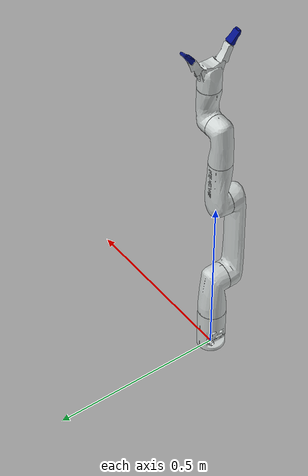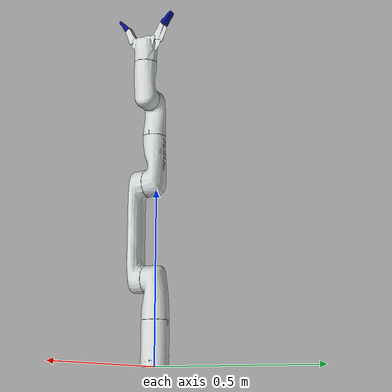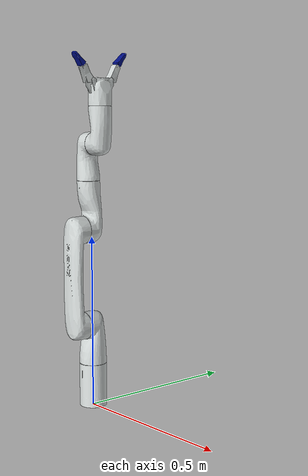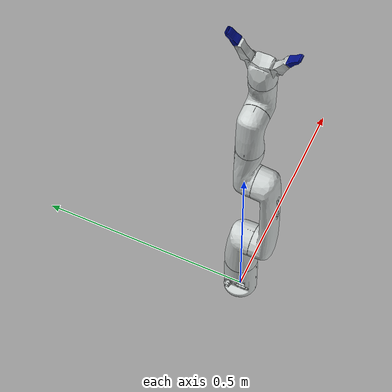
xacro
<?xml version="1.0"?>
<robot xmlns:xacro="http://www.ros.org/wiki/xacro" name="gen3_lite">
    <xacro:arg name="initial_positions_file" default="initial_positions.yaml" />
    <xacro:arg name="ros2_control_hardware_type" default="mock_components" />

    <!-- Import gen3_lite urdf file -->
    <xacro:include filename="$(find kortex_description)/robots/gen3_lite.urdf" />

    <!-- Import control_xacro -->
    <xacro:include filename="gen3_lite.ros2_control.xacro" />
    <xacro:include filename="gen3_lite_hand.ros2_control.xacro" />

    <xacro:gen3_lite_ros2_control name="FakeSystem" initial_positions_file="$(arg initial_positions_file)" ros2_control_hardware_type="$(arg ros2_control_hardware_type)"/>
    <xacro:gen3_lite_hand_ros2_control name="HandFakeSystem" initial_positions_file="$(arg initial_positions_file)" ros2_control_hardware_type="$(arg ros2_control_hardware_type)"/>

</robot>

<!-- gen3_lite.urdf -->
<!-- |    This document was autogenerated by xacro from kinova_2.urdf.xacro            | -->
<!-- |    EDITING THIS FILE BY HAND IS NOT RECOMMENDED                                 | -->
<robot name="gen3_lite">
  <!-- create link fixed to the "world" -->
  <link name="world"/>
  <ros2_control name="KortexMultiInterfaceHardware" type="system">
    <hardware>
      <plugin>kortex_driver/KortexMultiInterfaceHardware</plugin>
      <param name="robot_ip">192.168.11.11</param>
      <param name="username">admin</param>
      <param name="password">admin</param>
      <param name="port">10000</param>
      <param name="port_realtime">10001</param>
      <param name="session_inactivity_timeout_ms">60000</param>
      <param name="connection_inactivity_timeout_ms">2000</param>
      <param name="tf_prefix"></param>
      <param name="use_internal_bus_gripper_comm">False</param>
      <param name="gripper_joint_name">finger_joint</param>
      <param name="gripper_max_velocity">100.0</param>
      <param name="gripper_max_force">100.0</param>
    </hardware>
    <joint name="joint_1">
      <command_interface name="position">
        <param name="min">-2.69</param>
        <param name="max">2.69</param>
      </command_interface>
      <state_interface name="position">
        <param name="initial_value">0.0</param>
      </state_interface>
      <state_interface name="velocity"/>
      <state_interface name="effort"/>
    </joint>
    <joint name="joint_2">
      <command_interface name="position">
        <param name="min">-2.69</param>
        <param name="max">2.36</param>
      </command_interface>
      <state_interface name="position">
        <param name="initial_value">0.0</param>
      </state_interface>
      <state_interface name="velocity"/>
      <state_interface name="effort"/>
    </joint>
    <joint name="joint_3">
      <command_interface name="position">
        <param name="min">-2.69</param>
        <param name="max">2.69</param>
      </command_interface>
      <state_interface name="position">
        <param name="initial_value">0.0</param>
      </state_interface>
      <state_interface name="velocity"/>
      <state_interface name="effort"/>
    </joint>
    <joint name="joint_4">
      <command_interface name="position">
        <param name="min">-2.59</param>
        <param name="max">2.59</param>
      </command_interface>
      <state_interface name="position">
        <param name="initial_value">0.0</param>
      </state_interface>
      <state_interface name="velocity"/>
      <state_interface name="effort"/>
    </joint>
    <joint name="joint_5">
      <command_interface name="position">
        <param name="min">-2.57</param>
        <param name="max">2.57</param>
      </command_interface>
      <state_interface name="position">
        <param name="initial_value">0.0</param>
      </state_interface>
      <state_interface name="velocity"/>
      <state_interface name="effort"/>
    </joint>
    <joint name="joint_6">
      <command_interface name="position">
        <param name="min">-2.59</param>
        <param name="max">2.59</param>
      </command_interface>
      <state_interface name="position">
        <param name="initial_value">0.0</param>
      </state_interface>
      <state_interface name="velocity"/>
      <state_interface name="effort"/>
    </joint>
    <joint name="right_finger_bottom_joint">
      <command_interface name="position"/>
      <state_interface name="position"/>
      <state_interface name="velocity"/>
    </joint>
  </ros2_control>
  <joint name="base_joint" type="fixed">
    <origin rpy="0 0 0" xyz="0 0 0"/>
    <parent link="world"/>
    <child link="base_link"/>
  </joint>
  <link name="base_link">
    <inertial>
      <origin rpy="0 0 0" xyz="0.00244324 0.00015573 0.08616742"/>
      <mass value="1.14608471"/>
      <inertia ixx="0.00335854" ixy="3.9E-07" ixz="0.00010989" iyy="0.003311" iyz="1.91E-06" izz="0.00077158"/>
    </inertial>
    <visual>
      <origin rpy="0 0 0" xyz="0 0 0"/>
      <geometry>
        <mesh filename="package://kortex_description/arms/gen3_lite/6dof/meshes/base_link.STL"/>
      </geometry>
      <material name="">
        <color rgba="0.803 0.824 0.820 1"/>
      </material>
    </visual>
    <collision>
      <origin rpy="0 0 0" xyz="0 0 0"/>
      <geometry>
        <mesh filename="package://kortex_description/arms/gen3_lite/6dof/meshes/base_link.stl"/>
      </geometry>
    </collision>
  </link>
  <gazebo reference="base_link">
    <material>Kortex/Gray</material>
  </gazebo>
  <link name="shoulder_link">
    <inertial>
      <origin rpy="0 0 0" xyz="2.477E-05 0.02213531 0.09937686"/>
      <mass value="0.95974404"/>
      <inertia ixx="0.00165947" ixy="2E-08" ixz="3.6E-07" iyy="0.00140355" iyz="0.00034927" izz="0.00089493"/>
    </inertial>
    <visual>
      <origin rpy="0 0 0" xyz="0 0 0"/>
      <geometry>
        <mesh filename="package://kortex_description/arms/gen3_lite/6dof/meshes/shoulder_link.STL"/>
      </geometry>
      <material name="">
        <color rgba="0.803 0.824 0.820 1"/>
      </material>
    </visual>
    <collision>
      <origin rpy="0 0 0" xyz="0 0 0"/>
      <geometry>
        <mesh filename="package://kortex_description/arms/gen3_lite/6dof/meshes/shoulder_link.stl"/>
      </geometry>
    </collision>
  </link>
  <gazebo reference="shoulder_link">
    <material>Kortex/Gray</material>
  </gazebo>
  <joint name="joint_1" type="revolute">
    <origin rpy="0 0 0" xyz="0 0 0.12825"/>
    <parent link="base_link"/>
    <child link="shoulder_link"/>
    <axis xyz="0 0 1"/>
    <limit effort="10" lower="-2.69" upper="2.69" velocity="1.6"/>
  </joint>
  <link name="arm_link">
    <inertial>
      <origin rpy="0 0 0" xyz="0.02998299 0.21154808 0.0453031"/>
      <mass value="1.17756164"/>
      <inertia ixx="0.01149277" ixy="1E-06" ixz="1.6E-07" iyy="0.00102851" iyz="0.00140765" izz="0.01133492"/>
    </inertial>
    <visual>
      <origin rpy="0 0 0" xyz="0 0 0"/>
      <geometry>
        <mesh filename="package://kortex_description/arms/gen3_lite/6dof/meshes/arm_link.STL"/>
      </geometry>
      <material name="">
        <color rgba="0.803 0.824 0.820 1"/>
      </material>
    </visual>
    <collision>
      <origin rpy="0 0 0" xyz="0 0 0"/>
      <geometry>
        <mesh filename="package://kortex_description/arms/gen3_lite/6dof/meshes/arm_link.stl"/>
      </geometry>
    </collision>
  </link>
  <gazebo reference="arm_link">
    <material>Kortex/Gray</material>
  </gazebo>
  <joint name="joint_2" type="revolute">
    <origin rpy="1.5708 0 0" xyz="0 -0.03 0.115"/>
    <parent link="shoulder_link"/>
    <child link="arm_link"/>
    <axis xyz="0 0 1"/>
    <limit effort="14" lower="-2.69" upper="2.69" velocity="1.6"/>
  </joint>
  <link name="forearm_link">
    <inertial>
      <origin rpy="0 0 0" xyz="0.0301559 0.09502206 0.0073555"/>
      <mass value="0.59767669"/>
      <inertia ixx="0.00163256" ixy="7.11E-06" ixz="1.54E-06" iyy="0.00029798" iyz="9.587E-05" izz="0.00169091"/>
    </inertial>
    <visual>
      <origin rpy="0 0 0" xyz="0 0 0"/>
      <geometry>
        <mesh filename="package://kortex_description/arms/gen3_lite/6dof/meshes/forearm_link.STL"/>
      </geometry>
      <material name="">
        <color rgba="0.803 0.824 0.820 1"/>
      </material>
    </visual>
    <collision>
      <origin rpy="0 0 0" xyz="0 0 0"/>
      <geometry>
        <mesh filename="package://kortex_description/arms/gen3_lite/6dof/meshes/forearm_link.stl"/>
      </geometry>
    </collision>
  </link>
  <gazebo reference="forearm_link">
    <material>Kortex/Gray</material>
  </gazebo>
  <joint name="joint_3" type="revolute">
    <origin rpy="-3.1416 0 0" xyz="0 0.28 0"/>
    <parent link="arm_link"/>
    <child link="forearm_link"/>
    <axis xyz="0 0 1"/>
    <limit effort="10" lower="-2.69" upper="2.69" velocity="1.6"/>
  </joint>
  <link name="lower_wrist_link">
    <inertial>
      <origin rpy="0 0 0" xyz="0.00575149 0.01000443 0.08719207"/>
      <mass value="0.52693412"/>
      <inertia ixx="0.00069098" ixy="2.4E-07" ixz="0.00016483" iyy="0.00078519" iyz="7.4E-07" izz="0.00034115"/>
    </inertial>
    <visual>
      <origin rpy="0 0 0" xyz="0 0 0"/>
      <geometry>
        <mesh filename="package://kortex_description/arms/gen3_lite/6dof/meshes/lower_wrist_link.STL"/>
      </geometry>
      <material name="">
        <color rgba="0.803 0.824 0.820 1"/>
      </material>
    </visual>
    <collision>
      <origin rpy="0 0 0" xyz="0 0 0"/>
      <geometry>
        <mesh filename="package://kortex_description/arms/gen3_lite/6dof/meshes/lower_wrist_link.stl"/>
      </geometry>
    </collision>
  </link>
  <gazebo reference="lower_wrist_link">
    <material>Kortex/Gray</material>
  </gazebo>
  <joint name="joint_4" type="revolute">
    <origin rpy="1.5708 0 0" xyz="0 -0.14 0.02"/>
    <parent link="forearm_link"/>
    <child link="lower_wrist_link"/>
    <axis xyz="0 0 1"/>
    <limit effort="7" lower="-2.59" upper="2.59" velocity="1.6"/>
  </joint>
  <link name="upper_wrist_link">
    <inertial>
      <origin rpy="0 0 0" xyz="0.08056517 0.00980409 0.01872799"/>
      <mass value="0.58097325"/>
      <inertia ixx="0.00021268" ixy="5.21E-06" ixz="2.91E-06" iyy="0.00106371" iyz="1.1E-07" izz="0.00108465"/>
    </inertial>
    <visual>
      <origin rpy="0 0 0" xyz="0 0 0"/>
      <geometry>
        <mesh filename="package://kortex_description/arms/gen3_lite/6dof/meshes/upper_wrist_link.STL"/>
      </geometry>
      <material name="">
        <color rgba="0.803 0.824 0.820 1"/>
      </material>
    </visual>
    <collision>
      <origin rpy="0 0 0" xyz="0 0 0"/>
      <geometry>
        <mesh filename="package://kortex_description/arms/gen3_lite/6dof/meshes/upper_wrist_link.stl"/>
      </geometry>
    </collision>
  </link>
  <gazebo reference="upper_wrist_link">
    <material>Kortex/Gray</material>
  </gazebo>
  <joint name="joint_5" type="revolute">
    <origin rpy="0 1.5708 0" xyz="0.0285 0 0.105"/>
    <parent link="lower_wrist_link"/>
    <child link="upper_wrist_link"/>
    <axis xyz="0 0 1"/>
    <limit effort="7" lower="-2.57" upper="2.57" velocity="1.6"/>
  </joint>
  <link name="end_effector_link"/>
  <joint name="joint_6" type="revolute">
    <origin rpy="0 -1.5708 0" xyz="-0.105 0 0.0285"/>
    <parent link="upper_wrist_link"/>
    <child link="end_effector_link"/>
    <axis xyz="0 0 1"/>
    <limit effort="7" lower="-2.59" upper="2.59" velocity="3.2"/>
  </joint>
  <link name="dummy_link"/>
  <joint name="end_effector" type="fixed">
    <origin rpy="0 0 0" xyz="0 0 0"/>
    <parent link="end_effector_link"/>
    <child link="dummy_link"/>
    <axis xyz="0 0 1"/>
    <limit effort="0" lower="0" upper="0" velocity="0"/>
  </joint>
  <!-- Tool frame used by the arm -->
  <link name="tool_frame"/>
  <joint name="tool_frame_joint" type="fixed">
    <origin rpy="0 0 1.57079632679" xyz="0 0 0.130"/>
    <parent link="dummy_link"/>
    <child link="tool_frame"/>
    <axis xyz="0 0 0"/>
  </joint>
  <!-- Gripper description -->
  <joint name="gripper_base_joint" type="fixed">
    <origin rpy="0 0 0" xyz="0 0 0"/>
    <parent link="dummy_link"/>
    <child link="gripper_base_link"/>
    <axis xyz="0 0 0"/>
  </joint>
  <link name="gripper_base_link">
    <inertial>
      <origin rpy="0 0 0" xyz="4.03E-06 1.08E-05 0.041397"/>
      <mass value="0.1395"/>
      <inertia ixx="0.00011614" ixy="1E-08" ixz="4E-08" iyy="0.00010327" iyz="0" izz="9.707E-05"/>
    </inertial>
    <visual>
      <origin rpy="0 0 0" xyz="0 0 0"/>
      <geometry>
        <mesh filename="package://kortex_description/grippers/gen3_lite_2f/meshes/gripper_base_link.STL"/>
      </geometry>
      <material name="">
        <color rgba="0.803 0.824 0.820 1"/>
      </material>
    </visual>
    <collision>
      <origin rpy="0 0 0" xyz="0 0 0"/>
      <geometry>
        <mesh filename="package://kortex_description/grippers/gen3_lite_2f/meshes/gripper_base_link.stl"/>
      </geometry>
    </collision>
  </link>
  <gazebo reference="gripper_base_link">
    <material>Kortex/Gray</material>
  </gazebo>
  <link name="right_finger_prox_link">
    <inertial>
      <origin rpy="0 0 0" xyz="0.020257 0.0063483 6.991E-05"/>
      <mass value="0.018385"/>
      <inertia ixx="2.29E-06" ixy="1.43E-06" ixz="0" iyy="4.56E-06" iyz="0" izz="4.77E-06"/>
    </inertial>
    <visual>
      <origin rpy="0 0 0" xyz="0 0 0"/>
      <geometry>
        <mesh filename="package://kortex_description/grippers/gen3_lite_2f/meshes/right_finger_prox_link.STL"/>
      </geometry>
      <material name="">
        <color rgba="0.803 0.824 0.820 1"/>
      </material>
    </visual>
    <collision>
      <origin rpy="0 0 0" xyz="0 0 0"/>
      <geometry>
        <mesh filename="package://kortex_description/grippers/gen3_lite_2f/meshes/right_finger_prox_link.stl"/>
      </geometry>
    </collision>
  </link>
  <gazebo reference="right_finger_prox_link">
    <material>Kortex/Gray</material>
  </gazebo>
  <!-- TODO(MarqRazz) look into why the joint and limits needed to be flipped and modified -->
  <joint name="right_finger_bottom_joint" type="revolute">
    <origin rpy="1.571 0.611 1.571" xyz="0 -0.030501 0.070003"/>
    <parent link="gripper_base_link"/>
    <child link="right_finger_prox_link"/>
    <axis xyz="0 0 -1"/>
    <limit effort="50" lower="0.0" upper="0.85" velocity="0.6"/>
  </joint>
  <link name="right_finger_dist_link">
    <inertial>
      <origin rpy="0 0 0" xyz="0.018488 0.0011091 0"/>
      <mass value="0.010748"/>
      <inertia ixx="6.3E-07" ixy="3.2E-07" ixz="0" iyy="1.83E-06" iyz="0" izz="1.61E-06"/>
    </inertial>
    <visual>
      <origin rpy="0 0 0" xyz="0 0 0"/>
      <geometry>
        <mesh filename="package://kortex_description/grippers/gen3_lite_2f/meshes/right_finger_dist_link.STL"/>
      </geometry>
      <material name="">
        <color rgba="0 0.055 0.525 1"/>
      </material>
    </visual>
    <collision>
      <origin rpy="0 0 0" xyz="0 0 0"/>
      <geometry>
        <mesh filename="package://kortex_description/grippers/gen3_lite_2f/meshes/right_finger_dist_link.stl"/>
      </geometry>
    </collision>
  </link>
  <gazebo reference="right_finger_dist_link">
    <material>Kortex/Blue</material>
  </gazebo>
  <joint name="right_finger_tip_joint" type="revolute">
    <origin rpy="0 0 0" xyz="-0.045636 0.020423 0"/>
    <parent link="right_finger_prox_link"/>
    <child link="right_finger_dist_link"/>
    <axis xyz="0 0 1"/>
    <limit effort="1000" lower="-0.50" upper="0.21" velocity="1000"/>
    <!--limit lower="-1.03" upper="0.21" effort="1000" velocity="1000" /-->
    <mimic joint="right_finger_bottom_joint" multiplier="-0.676" offset="0.149"/>
  </joint>
  <link name="left_finger_prox_link">
    <inertial>
      <origin rpy="0 0 0" xyz="0.020257 0.0063483 6.99E-05"/>
      <mass value="0.018385"/>
      <inertia ixx="2.29E-06" ixy="1.43E-06" ixz="0" iyy="4.56E-06" iyz="0" izz="4.77E-06"/>
    </inertial>
    <visual>
      <origin rpy="0 0 0" xyz="0 0 0"/>
      <geometry>
        <mesh filename="package://kortex_description/grippers/gen3_lite_2f/meshes/left_finger_prox_link.STL"/>
      </geometry>
      <material name="">
        <color rgba="0.803 0.824 0.820 1"/>
      </material>
    </visual>
    <collision>
      <origin rpy="0 0 0" xyz="0 0 0"/>
      <geometry>
        <mesh filename="package://kortex_description/grippers/gen3_lite_2f/meshes/left_finger_prox_link.stl"/>
      </geometry>
    </collision>
  </link>
  <gazebo reference="left_finger_prox_link">
    <material>Kortex/Gray</material>
  </gazebo>
  <joint name="left_finger_bottom_joint" type="revolute">
    <origin rpy="-1.571 0.611 -1.571" xyz="0 0.0305 0.070003"/>
    <parent link="gripper_base_link"/>
    <child link="left_finger_prox_link"/>
    <axis xyz="0 0 1"/>
    <limit effort="1000" lower="0.0" upper="0.85" velocity="1000"/>
    <mimic joint="right_finger_bottom_joint" multiplier="1.0" offset="0.0"/>
  </joint>
  <link name="left_finger_dist_link">
    <inertial>
      <origin rpy="0 0 0" xyz="-0.018488 0.0011091 0"/>
      <mass value="0.010748"/>
      <inertia ixx="6.3E-07" ixy="3.2E-07" ixz="0" iyy="1.83E-06" iyz="0" izz="1.61E-06"/>
    </inertial>
    <visual>
      <origin rpy="0 0 0" xyz="0 0 0"/>
      <geometry>
        <mesh filename="package://kortex_description/grippers/gen3_lite_2f/meshes/left_finger_dist_link.STL"/>
      </geometry>
      <material name="">
        <color rgba="0 0.055 0.525 1"/>
      </material>
    </visual>
    <collision>
      <origin rpy="0 0 0" xyz="0 0 0"/>
      <geometry>
        <mesh filename="package://kortex_description/grippers/gen3_lite_2f/meshes/left_finger_dist_link.stl"/>
      </geometry>
    </collision>
  </link>
  <gazebo reference="left_finger_dist_link">
    <material>Kortex/Blue</material>
  </gazebo>
  <joint name="left_finger_tip_joint" type="revolute">
    <origin rpy="0 0 0" xyz="-0.045636 -0.020423 6.9901E-05"/>
    <parent link="left_finger_prox_link"/>
    <child link="left_finger_dist_link"/>
    <axis xyz="0 0 -1"/>
    <limit effort="1000" lower="-0.50" upper="0.21" velocity="1000"/>
    <!--limit lower="-1.03" upper="0.21" effort="1000" velocity="1000" /-->
    <mimic joint="right_finger_bottom_joint" multiplier="-0.676" offset="0.149"/>
  </joint>
</robot>
